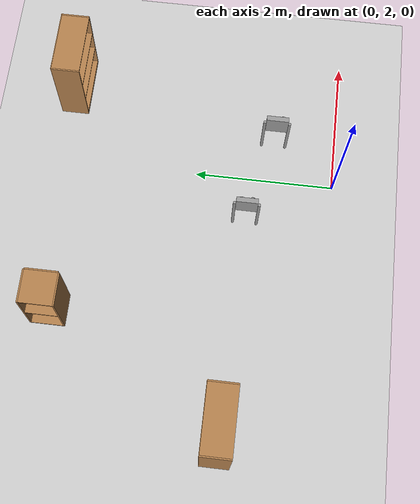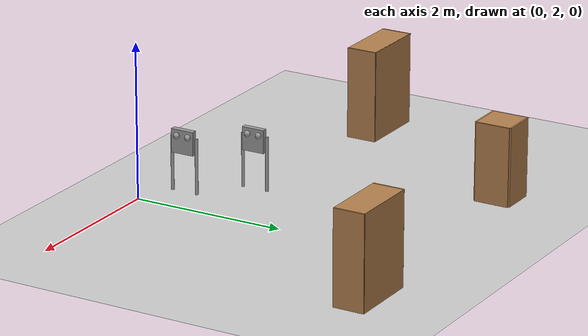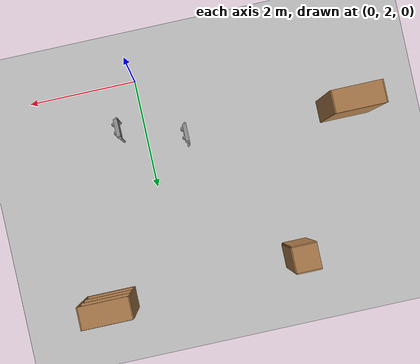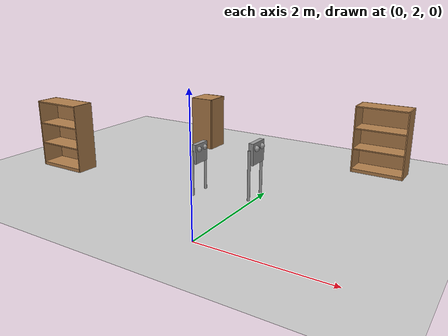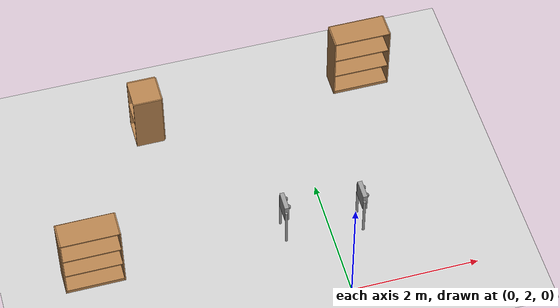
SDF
<sdf version="1.7">
 <world name="default">
  <model name="ground_plane">
   <static>1</static>
   <link name="link">
    <collision name="collision">
     <geometry><plane><normal>0 0 1</normal><size>100 100</size></plane></geometry>
     <surface>
      <contact><collide_bitmask>65535</collide_bitmask></contact>
      <friction><ode><mu>100</mu><mu2>50</mu2></ode></friction>
     </surface>
    </collision>
    <visual name="visual">
     <cast_shadows>0</cast_shadows>
     <geometry><plane><normal>0 0 1</normal><size>100 100</size></plane></geometry>
     <material>
      <script><uri>file://media/materials/scripts/gazebo.material</uri><name>Gazebo/Grey</name></script>
     </material>
    </visual>
   </link>
  </model>
  <model name="cabinet_clone_0">
   <static>1</static>
   <link name="cabinet_bottom_plate">
    <inertial>
     <pose>0 0 -1 0 -0 0</pose>
     <inertia><ixx>2.05</ixx><ixy>0</ixy><ixz>0</ixz><iyy>2.05</iyy><iyz>0</iyz><izz>2.05</izz></inertia>
     <mass>25</mass>
    </inertial>
    <collision name="cabinet_bottom_plate_geom">
     <pose>0 0 0.01 0 -0 0</pose>
     <geometry><box><size>0.45 0.45 0.02</size></box></geometry>
    </collision>
    <visual name="cabinet_bottom_plate_geom_visual">
     <pose>0 0 0.01 0 -0 0</pose>
     <geometry><box><size>0.45 0.45 0.02</size></box></geometry>
     <material>
      <script><uri>file://media/materials/scripts/gazebo.material</uri><name>Gazebo/Wood</name></script>
     </material>
    </visual>
    <collision name="cabinet_bottom_plate_geom_cabinet_back_plate">
     <pose>0.235 0 0.51 0 -0 0</pose>
     <geometry><box><size>0.02 0.45 1.02</size></box></geometry>
    </collision>
    <visual name="cabinet_bottom_plate_geom_cabinet_back_plate_visual">
     <pose>0.235 0 0.51 0 -0 0</pose>
     <geometry><box><size>0.02 0.45 1.02</size></box></geometry>
     <material>
      <script><uri>file://media/materials/scripts/gazebo.material</uri><name>Gazebo/Wood</name></script>
     </material>
    </visual>
    <collision name="cabinet_bottom_plate_geom_cabinet_left_plate">
     <pose>0 0.235 0.51 0 -0 0</pose>
     <geometry><box><size>0.45 0.02 1.02</size></box></geometry>
    </collision>
    <visual name="cabinet_bottom_plate_geom_cabinet_left_plate_visual">
     <pose>0 0.235 0.51 0 -0 0</pose>
     <geometry><box><size>0.45 0.02 1.02</size></box></geometry>
     <material>
      <script><uri>file://media/materials/scripts/gazebo.material</uri><name>Gazebo/Wood</name></script>
     </material>
    </visual>
    <collision name="cabinet_bottom_plate_geom_cabinet_middle_plate">
     <pose>0 0 0.51 0 -0 0</pose>
     <geometry><box><size>0.45 0.45 0.02</size></box></geometry>
    </collision>
    <visual name="cabinet_bottom_plate_geom_cabinet_middle_plate_visual">
     <pose>0 0 0.51 0 -0 0</pose>
     <geometry><box><size>0.45 0.45 0.02</size></box></geometry>
     <material>
      <script><uri>file://media/materials/scripts/gazebo.material</uri><name>Gazebo/Wood</name></script>
     </material>
    </visual>
    <collision name="cabinet_bottom_plate_geom_cabinet_right_plate">
     <pose>0 -0.235 0.51 0 -0 0</pose>
     <geometry><box><size>0.45 0.02 1.02</size></box></geometry>
    </collision>
    <visual name="cabinet_bottom_plate_geom_cabinet_right_plate_visual">
     <pose>0 -0.235 0.51 0 -0 0</pose>
     <geometry><box><size>0.45 0.02 1.02</size></box></geometry>
     <material>
      <script><uri>file://media/materials/scripts/gazebo.material</uri><name>Gazebo/Wood</name></script>
     </material>
    </visual>
    <collision name="cabinet_bottom_plate_geom_cabinet_top_plate">
     <pose>0 0 1.01 0 -0 0</pose>
     <geometry><box><size>0.45 0.45 0.02</size></box></geometry>
    </collision>
    <visual name="cabinet_bottom_plate_geom_cabinet_top_plate_visual">
     <pose>0 0 1.01 0 -0 0</pose>
     <geometry><box><size>0.45 0.45 0.02</size></box></geometry>
     <material>
      <script><uri>file://media/materials/scripts/gazebo.material</uri><name>Gazebo/Wood</name></script>
     </material>
    </visual>
   </link>
   <pose>-2.27456 5.78159 0 0 -0 0</pose>
  </model>
  <model name="bookshelf">
   <static>1</static>
   <link name="link">
    <inertial><mass>1</mass></inertial>
    <collision name="back">
     <pose>0 0.005 0.6 0 -0 0</pose>
     <geometry><box><size>0.9 0.01 1.2</size></box></geometry>
    </collision>
    <visual name="visual1">
     <pose>0 0.005 0.6 0 -0 0</pose>
     <geometry><box><size>0.9 0.01 1.2</size></box></geometry>
     <material>
      <script><uri>file://media/materials/scripts/gazebo.material</uri><name>Gazebo/Wood</name></script>
     </material>
    </visual>
    <collision name="left_side">
     <pose>0.45 -0.195 0.6 0 -0 0</pose>
     <geometry><box><size>0.02 0.4 1.2</size></box></geometry>
    </collision>
    <visual name="visual2">
     <pose>0.45 -0.195 0.6 0 -0 0</pose>
     <geometry><box><size>0.02 0.4 1.2</size></box></geometry>
     <material>
      <script><uri>file://media/materials/scripts/gazebo.material</uri><name>Gazebo/Wood</name></script>
     </material>
    </visual>
    <collision name="right_side">
     <pose>-0.45 -0.195 0.6 0 -0 0</pose>
     <geometry><box><size>0.02 0.4 1.2</size></box></geometry>
    </collision>
    <visual name="visual3">
     <pose>-0.45 -0.195 0.6 0 -0 0</pose>
     <geometry><box><size>0.02 0.4 1.2</size></box></geometry>
     <material>
      <script><uri>file://media/materials/scripts/gazebo.material</uri><name>Gazebo/Wood</name></script>
     </material>
    </visual>
    <collision name="bottom">
     <pose>0 -0.195 0.03 0 -0 0</pose>
     <geometry><box><size>0.88 0.4 0.06</size></box></geometry>
    </collision>
    <visual name="visual4">
     <pose>0 -0.195 0.03 0 -0 0</pose>
     <geometry><box><size>0.88 0.4 0.06</size></box></geometry>
     <material>
      <script><uri>file://media/materials/scripts/gazebo.material</uri><name>Gazebo/Wood</name></script>
     </material>
    </visual>
    <collision name="top">
     <pose>0 -0.195 1.19 0 -0 0</pose>
     <geometry><box><size>0.88 0.4 0.02</size></box></geometry>
    </collision>
    <visual name="visual5">
     <pose>0 -0.195 1.19 0 -0 0</pose>
     <geometry><box><size>0.88 0.4 0.02</size></box></geometry>
     <material>
      <script><uri>file://media/materials/scripts/gazebo.material</uri><name>Gazebo/Wood</name></script>
     </material>
    </visual>
    <collision name="low_shelf">
     <pose>0 -0.195 0.43 0 -0 0</pose>
     <geometry><box><size>0.88 0.4 0.02</size></box></geometry>
    </collision>
    <visual name="visual6">
     <pose>0 -0.195 0.43 0 -0 0</pose>
     <geometry><box><size>0.88 0.4 0.02</size></box></geometry>
     <material>
      <script><uri>file://media/materials/scripts/gazebo.material</uri><name>Gazebo/Wood</name></script>
     </material>
    </visual>
    <collision name="high_shelf">
     <pose>0 -0.195 0.8 0 -0 0</pose>
     <geometry><box><size>0.88 0.4 0.02</size></box></geometry>
    </collision>
    <visual name="visual7">
     <pose>0 -0.195 0.8 0 -0 0</pose>
     <geometry><box><size>0.88 0.4 0.02</size></box></geometry>
     <material>
      <script><uri>file://media/materials/scripts/gazebo.material</uri><name>Gazebo/Wood</name></script>
     </material>
    </visual>
   </link>
   <pose>-3.68929 3.48271 0 0 -0 0</pose>
  </model>
  <model name="bookshelf_clone">
   <static>1</static>
   <link name="link">
    <inertial><mass>1</mass></inertial>
    <collision name="back">
     <pose>0 0.005 0.6 0 -0 0</pose>
     <geometry><box><size>0.9 0.01 1.2</size></box></geometry>
    </collision>
    <visual name="visual1">
     <pose>0 0.005 0.6 0 -0 0</pose>
     <geometry><box><size>0.9 0.01 1.2</size></box></geometry>
     <material>
      <script><uri>file://media/materials/scripts/gazebo.material</uri><name>Gazebo/Wood</name></script>
     </material>
    </visual>
    <collision name="left_side">
     <pose>0.45 -0.195 0.6 0 -0 0</pose>
     <geometry><box><size>0.02 0.4 1.2</size></box></geometry>
    </collision>
    <visual name="visual2">
     <pose>0.45 -0.195 0.6 0 -0 0</pose>
     <geometry><box><size>0.02 0.4 1.2</size></box></geometry>
     <material>
      <script><uri>file://media/materials/scripts/gazebo.material</uri><name>Gazebo/Wood</name></script>
     </material>
    </visual>
    <collision name="right_side">
     <pose>-0.45 -0.195 0.6 0 -0 0</pose>
     <geometry><box><size>0.02 0.4 1.2</size></box></geometry>
    </collision>
    <visual name="visual3">
     <pose>-0.45 -0.195 0.6 0 -0 0</pose>
     <geometry><box><size>0.02 0.4 1.2</size></box></geometry>
     <material>
      <script><uri>file://media/materials/scripts/gazebo.material</uri><name>Gazebo/Wood</name></script>
     </material>
    </visual>
    <collision name="bottom">
     <pose>0 -0.195 0.03 0 -0 0</pose>
     <geometry><box><size>0.88 0.4 0.06</size></box></geometry>
    </collision>
    <visual name="visual4">
     <pose>0 -0.195 0.03 0 -0 0</pose>
     <geometry><box><size>0.88 0.4 0.06</size></box></geometry>
     <material>
      <script><uri>file://media/materials/scripts/gazebo.material</uri><name>Gazebo/Wood</name></script>
     </material>
    </visual>
    <collision name="top">
     <pose>0 -0.195 1.19 0 -0 0</pose>
     <geometry><box><size>0.88 0.4 0.02</size></box></geometry>
    </collision>
    <visual name="visual5">
     <pose>0 -0.195 1.19 0 -0 0</pose>
     <geometry><box><size>0.88 0.4 0.02</size></box></geometry>
     <material>
      <script><uri>file://media/materials/scripts/gazebo.material</uri><name>Gazebo/Wood</name></script>
     </material>
    </visual>
    <collision name="low_shelf">
     <pose>0 -0.195 0.43 0 -0 0</pose>
     <geometry><box><size>0.88 0.4 0.02</size></box></geometry>
    </collision>
    <visual name="visual6">
     <pose>0 -0.195 0.43 0 -0 0</pose>
     <geometry><box><size>0.88 0.4 0.02</size></box></geometry>
     <material>
      <script><uri>file://media/materials/scripts/gazebo.material</uri><name>Gazebo/Wood</name></script>
     </material>
    </visual>
    <collision name="high_shelf">
     <pose>0 -0.195 0.8 0 -0 0</pose>
     <geometry><box><size>0.88 0.4 0.02</size></box></geometry>
    </collision>
    <visual name="visual7">
     <pose>0 -0.195 0.8 0 -0 0</pose>
     <geometry><box><size>0.88 0.4 0.02</size></box></geometry>
     <material>
      <script><uri>file://media/materials/scripts/gazebo.material</uri><name>Gazebo/Wood</name></script>
     </material>
    </visual>
   </link>
   <pose>1.27744 6.13406 0 0 -0 0</pose>
  </model>
  <model name="HumanoidRobot">
   <link name="link_0">
    <inertial>
     <mass>1</mass>
     <inertia><ixx>0.145833</ixx><ixy>0</ixy><ixz>0</ixz><iyy>0.145833</iyy><iyz>0</iyz><izz>0.125</izz></inertia>
    </inertial>
    <pose>-0.005 -0.16914 -0.096951 0 -0 0</pose>
    <visual name="visual">
     <geometry><cylinder><radius>0.02</radius><length>0.7</length></cylinder></geometry>
     <material>
      <lighting>1</lighting>
      <script><uri>file://media/materials/scripts/gazebo.material</uri><name>Gazebo/Grey</name></script>
      <shader type="pixel"><normal_map>__default__</normal_map></shader>
      <ambient>0.3 0.3 0.3 1</ambient>
      <diffuse>0.7 0.7 0.7 1</diffuse>
      <specular>0.01 0.01 0.01 1</specular>
      <emissive>0 0 0 1</emissive>
     </material>
    </visual>
    <collision name="collision">
     <geometry><cylinder><radius>0.02</radius><length>0.7</length></cylinder></geometry>
     <surface>
      <friction>
       <ode><mu>1</mu><mu2>1</mu2><fdir1>0 0 0</fdir1><slip1>0</slip1><slip2>0</slip2></ode>
       <torsional>
        <coefficient>1</coefficient>
        <patch_radius>0</patch_radius>
        <surface_radius>0</surface_radius>
        <use_patch_radius>1</use_patch_radius>
        <ode><slip>0</slip></ode>
       </torsional>
      </friction>
      <bounce><restitution_coefficient>0</restitution_coefficient><threshold>1e+06</threshold></bounce>
      <contact>
       <collide_without_contact>0</collide_without_contact>
       <collide_without_contact_bitmask>1</collide_without_contact_bitmask>
       <collide_bitmask>1</collide_bitmask>
       <ode>
        <soft_cfm>0</soft_cfm>
        <soft_erp>0.2</soft_erp>
        <kp>1e+13</kp>
        <kd>1</kd>
        <max_vel>0.01</max_vel>
        <min_depth>0</min_depth>
       </ode>
       <bullet>
        <split_impulse>1</split_impulse>
        <split_impulse_penetration_threshold>-0.01</split_impulse_penetration_threshold>
        <soft_cfm>0</soft_cfm>
        <soft_erp>0.2</soft_erp>
        <kp>1e+13</kp>
        <kd>1</kd>
       </bullet>
      </contact>
     </surface>
    </collision>
   </link>
   <link name="link_0_clone">
    <inertial>
     <mass>1</mass>
     <inertia><ixx>0.145833</ixx><ixy>0</ixy><ixz>0</ixz><iyy>0.145833</iyy><iyz>0</iyz><izz>0.125</izz></inertia>
    </inertial>
    <pose>-0.005 0.16957 -0.096951 0 -0 0</pose>
    <visual name="visual">
     <geometry><cylinder><radius>0.02</radius><length>0.7</length></cylinder></geometry>
     <material>
      <lighting>1</lighting>
      <script><uri>file://media/materials/scripts/gazebo.material</uri><name>Gazebo/Grey</name></script>
      <shader type="pixel"><normal_map>__default__</normal_map></shader>
      <ambient>0.3 0.3 0.3 1</ambient>
      <diffuse>0.7 0.7 0.7 1</diffuse>
      <specular>0.01 0.01 0.01 1</specular>
      <emissive>0 0 0 1</emissive>
     </material>
    </visual>
    <collision name="collision">
     <geometry><cylinder><radius>0.02</radius><length>0.7</length></cylinder></geometry>
     <surface>
      <friction>
       <ode><mu>1</mu><mu2>1</mu2><fdir1>0 0 0</fdir1><slip1>0</slip1><slip2>0</slip2></ode>
       <torsional>
        <coefficient>1</coefficient>
        <patch_radius>0</patch_radius>
        <surface_radius>0</surface_radius>
        <use_patch_radius>1</use_patch_radius>
        <ode><slip>0</slip></ode>
       </torsional>
      </friction>
      <bounce><restitution_coefficient>0</restitution_coefficient><threshold>1e+06</threshold></bounce>
      <contact>
       <collide_without_contact>0</collide_without_contact>
       <collide_without_contact_bitmask>1</collide_without_contact_bitmask>
       <collide_bitmask>1</collide_bitmask>
       <ode>
        <soft_cfm>0</soft_cfm>
        <soft_erp>0.2</soft_erp>
        <kp>1e+13</kp>
        <kd>1</kd>
        <max_vel>0.01</max_vel>
        <min_depth>0</min_depth>
       </ode>
       <bullet>
        <split_impulse>1</split_impulse>
        <split_impulse_penetration_threshold>-0.01</split_impulse_penetration_threshold>
        <soft_cfm>0</soft_cfm>
        <soft_erp>0.2</soft_erp>
        <kp>1e+13</kp>
        <kd>1</kd>
       </bullet>
      </contact>
     </surface>
    </collision>
   </link>
   <link name="link_1">
    <inertial>
     <mass>1</mass>
     <inertia>
      <ixx>0.166667</ixx>
      <ixy>0</ixy>
      <ixz>0</ixz>
      <iyy>0.166667</iyy>
      <iyz>0</iyz>
      <izz>0.166667</izz>
     </inertia>
    </inertial>
    <pose>0.01 -0.00043 0.196694 0 -0 0</pose>
    <visual name="visual">
     <geometry><box><size>0.07 0.3 0.3</size></box></geometry>
     <material>
      <lighting>1</lighting>
      <script><uri>file://media/materials/scripts/gazebo.material</uri><name>Gazebo/Grey</name></script>
      <shader type="pixel"><normal_map>__default__</normal_map></shader>
      <ambient>0.3 0.3 0.3 1</ambient>
      <diffuse>0.7 0.7 0.7 1</diffuse>
      <specular>0.01 0.01 0.01 1</specular>
      <emissive>0 0 0 1</emissive>
     </material>
    </visual>
    <collision name="collision">
     <geometry><box><size>0.07 0.3 0.3</size></box></geometry>
     <surface>
      <friction>
       <ode><mu>1</mu><mu2>1</mu2><fdir1>0 0 0</fdir1><slip1>0</slip1><slip2>0</slip2></ode>
       <torsional>
        <coefficient>1</coefficient>
        <patch_radius>0</patch_radius>
        <surface_radius>0</surface_radius>
        <use_patch_radius>1</use_patch_radius>
        <ode><slip>0</slip></ode>
       </torsional>
      </friction>
      <bounce><restitution_coefficient>0</restitution_coefficient><threshold>1e+06</threshold></bounce>
      <contact>
       <collide_without_contact>0</collide_without_contact>
       <collide_without_contact_bitmask>1</collide_without_contact_bitmask>
       <collide_bitmask>1</collide_bitmask>
       <ode>
        <soft_cfm>0</soft_cfm>
        <soft_erp>0.2</soft_erp>
        <kp>1e+13</kp>
        <kd>1</kd>
        <max_vel>0.01</max_vel>
        <min_depth>0</min_depth>
       </ode>
       <bullet>
        <split_impulse>1</split_impulse>
        <split_impulse_penetration_threshold>-0.01</split_impulse_penetration_threshold>
        <soft_cfm>0</soft_cfm>
        <soft_erp>0.2</soft_erp>
        <kp>1e+13</kp>
        <kd>1</kd>
       </bullet>
      </contact>
     </surface>
    </collision>
   </link>
   <link name="link_3">
    <inertial>
     <mass>0.000505039</mass>
     <inertia>
      <ixx>3.20326e-07</ixx>
      <ixy>0</ixy>
      <ixz>0</ixz>
      <iyy>3.20326e-07</iyy>
      <iyz>0</iyz>
      <izz>3.20326e-07</izz>
     </inertia>
    </inertial>
    <pose>0.045067 0.079776 0.268028 0 -0 0</pose>
    <visual name="visual">
     <geometry><sphere><radius>0.0398202</radius></sphere></geometry>
     <material>
      <lighting>1</lighting>
      <script><uri>file://media/materials/scripts/gazebo.material</uri><name>Gazebo/Grey</name></script>
      <shader type="pixel"/>
      <emissive>0 0 0 1</emissive>
     </material>
    </visual>
    <collision name="collision">
     <geometry><sphere><radius>0.03982</radius></sphere></geometry>
     <surface>
      <friction>
       <ode><mu>1</mu><mu2>1</mu2><fdir1>0 0 0</fdir1><slip1>0</slip1><slip2>0</slip2></ode>
       <torsional>
        <coefficient>1</coefficient>
        <patch_radius>0</patch_radius>
        <surface_radius>0</surface_radius>
        <use_patch_radius>1</use_patch_radius>
        <ode><slip>0</slip></ode>
       </torsional>
      </friction>
      <bounce><restitution_coefficient>0</restitution_coefficient><threshold>1e+06</threshold></bounce>
      <contact>
       <collide_without_contact>0</collide_without_contact>
       <collide_without_contact_bitmask>1</collide_without_contact_bitmask>
       <collide_bitmask>1</collide_bitmask>
       <ode>
        <soft_cfm>0</soft_cfm>
        <soft_erp>0.2</soft_erp>
        <kp>1e+13</kp>
        <kd>1</kd>
        <max_vel>0.01</max_vel>
        <min_depth>0</min_depth>
       </ode>
       <bullet>
        <split_impulse>1</split_impulse>
        <split_impulse_penetration_threshold>-0.01</split_impulse_penetration_threshold>
        <soft_cfm>0</soft_cfm>
        <soft_erp>0.2</soft_erp>
        <kp>1e+13</kp>
        <kd>1</kd>
       </bullet>
      </contact>
     </surface>
    </collision>
   </link>
   <link name="link_3_clone">
    <inertial>
     <mass>0.000505039</mass>
     <inertia>
      <ixx>3.20326e-07</ixx>
      <ixy>0</ixy>
      <ixz>0</ixz>
      <iyy>3.20326e-07</iyy>
      <iyz>0</iyz>
      <izz>3.20326e-07</izz>
     </inertia>
    </inertial>
    <pose>0.049349 -0.072893 0.26849 0 -0 0</pose>
    <visual name="visual">
     <geometry><sphere><radius>0.0398202</radius></sphere></geometry>
     <material>
      <lighting>1</lighting>
      <script><uri>file://media/materials/scripts/gazebo.material</uri><name>Gazebo/Grey</name></script>
      <shader type="pixel"/>
      <emissive>0 0 0 1</emissive>
     </material>
    </visual>
    <collision name="collision">
     <geometry><sphere><radius>0.03982</radius></sphere></geometry>
     <surface>
      <friction>
       <ode><mu>1</mu><mu2>1</mu2><fdir1>0 0 0</fdir1><slip1>0</slip1><slip2>0</slip2></ode>
       <torsional>
        <coefficient>1</coefficient>
        <patch_radius>0</patch_radius>
        <surface_radius>0</surface_radius>
        <use_patch_radius>1</use_patch_radius>
        <ode><slip>0</slip></ode>
       </torsional>
      </friction>
      <bounce><restitution_coefficient>0</restitution_coefficient><threshold>1e+06</threshold></bounce>
      <contact>
       <collide_without_contact>0</collide_without_contact>
       <collide_without_contact_bitmask>1</collide_without_contact_bitmask>
       <collide_bitmask>1</collide_bitmask>
       <ode>
        <soft_cfm>0</soft_cfm>
        <soft_erp>0.2</soft_erp>
        <kp>1e+13</kp>
        <kd>1</kd>
        <max_vel>0.01</max_vel>
        <min_depth>0</min_depth>
       </ode>
       <bullet>
        <split_impulse>1</split_impulse>
        <split_impulse_penetration_threshold>-0.01</split_impulse_penetration_threshold>
        <soft_cfm>0</soft_cfm>
        <soft_erp>0.2</soft_erp>
        <kp>1e+13</kp>
        <kd>1</kd>
       </bullet>
      </contact>
     </surface>
    </collision>
   </link>
   <joint name="link_1_JOINT_0" type="revolute">
    <parent>link_1</parent>
    <child>link_0_clone</child>
    <axis>
     <xyz>0 1 0</xyz>
     <limit>
      <lower>-1.79769e+308</lower>
      <upper>1.79769e+308</upper>
      <effort>-1</effort>
      <velocity>-1</velocity>
     </limit>
     <dynamics>
      <spring_reference>0</spring_reference>
      <spring_stiffness>0</spring_stiffness>
      <damping>0</damping>
     </dynamics>
    </axis>
    <physics>
     <ode><limit><cfm>0</cfm><erp>0.2</erp></limit><suspension><cfm>0</cfm><erp>0.2</erp></suspension></ode>
    </physics>
   </joint>
   <joint name="link_1_JOINT_2" type="revolute">
    <parent>link_1</parent>
    <child>link_0</child>
    <axis>
     <xyz>-0 -1 -0</xyz>
     <limit>
      <lower>-1.79769e+308</lower>
      <upper>1.79769e+308</upper>
      <effort>-1</effort>
      <velocity>-1</velocity>
     </limit>
     <dynamics>
      <spring_reference>0</spring_reference>
      <spring_stiffness>0</spring_stiffness>
      <damping>0</damping>
     </dynamics>
    </axis>
    <physics>
     <ode><limit><cfm>0</cfm><erp>0.2</erp></limit><suspension><cfm>0</cfm><erp>0.2</erp></suspension></ode>
    </physics>
   </joint>
   <joint name="link_1_JOINT_3" type="fixed">
    <parent>link_1</parent>
    <child>link_3</child>
    <physics>
     <ode><limit><cfm>0</cfm><erp>0.2</erp></limit><suspension><cfm>0</cfm><erp>0.2</erp></suspension></ode>
    </physics>
   </joint>
   <joint name="link_1_JOINT_4" type="fixed">
    <parent>link_1</parent>
    <child>link_3_clone</child>
    <physics>
     <ode><limit><cfm>0</cfm><erp>0.2</erp></limit><suspension><cfm>0</cfm><erp>0.2</erp></suspension></ode>
    </physics>
   </joint>
   <static>0</static>
   <pose>0.401512 2.92793 0.848131 0 -0 0</pose>
  </model>
  <model name="HumanoidRobot_0">
   <link name="link_0">
    <inertial>
     <mass>1</mass>
     <inertia><ixx>0.145833</ixx><ixy>0</ixy><ixz>0</ixz><iyy>0.145833</iyy><iyz>0</iyz><izz>0.125</izz></inertia>
    </inertial>
    <pose>-0.005 -0.16914 -0.096951 0 -0 0</pose>
    <visual name="visual">
     <geometry><cylinder><radius>0.02</radius><length>0.7</length></cylinder></geometry>
     <material>
      <lighting>1</lighting>
      <script><uri>file://media/materials/scripts/gazebo.material</uri><name>Gazebo/Grey</name></script>
      <shader type="pixel"><normal_map>__default__</normal_map></shader>
      <ambient>0.3 0.3 0.3 1</ambient>
      <diffuse>0.7 0.7 0.7 1</diffuse>
      <specular>0.01 0.01 0.01 1</specular>
      <emissive>0 0 0 1</emissive>
     </material>
    </visual>
    <collision name="collision">
     <geometry><cylinder><radius>0.02</radius><length>0.7</length></cylinder></geometry>
     <surface>
      <friction>
       <ode><mu>1</mu><mu2>1</mu2><fdir1>0 0 0</fdir1><slip1>0</slip1><slip2>0</slip2></ode>
       <torsional>
        <coefficient>1</coefficient>
        <patch_radius>0</patch_radius>
        <surface_radius>0</surface_radius>
        <use_patch_radius>1</use_patch_radius>
        <ode><slip>0</slip></ode>
       </torsional>
      </friction>
      <bounce><restitution_coefficient>0</restitution_coefficient><threshold>1e+06</threshold></bounce>
      <contact>
       <collide_without_contact>0</collide_without_contact>
       <collide_without_contact_bitmask>1</collide_without_contact_bitmask>
       <collide_bitmask>1</collide_bitmask>
       <ode>
        <soft_cfm>0</soft_cfm>
        <soft_erp>0.2</soft_erp>
        <kp>1e+13</kp>
        <kd>1</kd>
        <max_vel>0.01</max_vel>
        <min_depth>0</min_depth>
       </ode>
       <bullet>
        <split_impulse>1</split_impulse>
        <split_impulse_penetration_threshold>-0.01</split_impulse_penetration_threshold>
        <soft_cfm>0</soft_cfm>
        <soft_erp>0.2</soft_erp>
        <kp>1e+13</kp>
        <kd>1</kd>
       </bullet>
      </contact>
     </surface>
    </collision>
   </link>
   <link name="link_0_clone">
    <inertial>
     <mass>1</mass>
     <inertia><ixx>0.145833</ixx><ixy>0</ixy><ixz>0</ixz><iyy>0.145833</iyy><iyz>0</iyz><izz>0.125</izz></inertia>
    </inertial>
    <pose>-0.005 0.16957 -0.096951 0 -0 0</pose>
    <visual name="visual">
     <geometry><cylinder><radius>0.02</radius><length>0.7</length></cylinder></geometry>
     <material>
      <lighting>1</lighting>
      <script><uri>file://media/materials/scripts/gazebo.material</uri><name>Gazebo/Grey</name></script>
      <shader type="pixel"><normal_map>__default__</normal_map></shader>
      <ambient>0.3 0.3 0.3 1</ambient>
      <diffuse>0.7 0.7 0.7 1</diffuse>
      <specular>0.01 0.01 0.01 1</specular>
      <emissive>0 0 0 1</emissive>
     </material>
    </visual>
    <collision name="collision">
     <geometry><cylinder><radius>0.02</radius><length>0.7</length></cylinder></geometry>
     <surface>
      <friction>
       <ode><mu>1</mu><mu2>1</mu2><fdir1>0 0 0</fdir1><slip1>0</slip1><slip2>0</slip2></ode>
       <torsional>
        <coefficient>1</coefficient>
        <patch_radius>0</patch_radius>
        <surface_radius>0</surface_radius>
        <use_patch_radius>1</use_patch_radius>
        <ode><slip>0</slip></ode>
       </torsional>
      </friction>
      <bounce><restitution_coefficient>0</restitution_coefficient><threshold>1e+06</threshold></bounce>
      <contact>
       <collide_without_contact>0</collide_without_contact>
       <collide_without_contact_bitmask>1</collide_without_contact_bitmask>
       <collide_bitmask>1</collide_bitmask>
       <ode>
        <soft_cfm>0</soft_cfm>
        <soft_erp>0.2</soft_erp>
        <kp>1e+13</kp>
        <kd>1</kd>
        <max_vel>0.01</max_vel>
        <min_depth>0</min_depth>
       </ode>
       <bullet>
        <split_impulse>1</split_impulse>
        <split_impulse_penetration_threshold>-0.01</split_impulse_penetration_threshold>
        <soft_cfm>0</soft_cfm>
        <soft_erp>0.2</soft_erp>
        <kp>1e+13</kp>
        <kd>1</kd>
       </bullet>
      </contact>
     </surface>
    </collision>
   </link>
   <link name="link_1">
    <inertial>
     <mass>1</mass>
     <inertia>
      <ixx>0.166667</ixx>
      <ixy>0</ixy>
      <ixz>0</ixz>
      <iyy>0.166667</iyy>
      <iyz>0</iyz>
      <izz>0.166667</izz>
     </inertia>
    </inertial>
    <pose>0.01 -0.00043 0.196694 0 -0 0</pose>
    <visual name="visual">
     <geometry><box><size>0.07 0.3 0.3</size></box></geometry>
     <material>
      <lighting>1</lighting>
      <script><uri>file://media/materials/scripts/gazebo.material</uri><name>Gazebo/Grey</name></script>
      <shader type="pixel"><normal_map>__default__</normal_map></shader>
      <ambient>0.3 0.3 0.3 1</ambient>
      <diffuse>0.7 0.7 0.7 1</diffuse>
      <specular>0.01 0.01 0.01 1</specular>
      <emissive>0 0 0 1</emissive>
     </material>
    </visual>
    <collision name="collision">
     <geometry><box><size>0.07 0.3 0.3</size></box></geometry>
     <surface>
      <friction>
       <ode><mu>1</mu><mu2>1</mu2><fdir1>0 0 0</fdir1><slip1>0</slip1><slip2>0</slip2></ode>
       <torsional>
        <coefficient>1</coefficient>
        <patch_radius>0</patch_radius>
        <surface_radius>0</surface_radius>
        <use_patch_radius>1</use_patch_radius>
        <ode><slip>0</slip></ode>
       </torsional>
      </friction>
      <bounce><restitution_coefficient>0</restitution_coefficient><threshold>1e+06</threshold></bounce>
      <contact>
       <collide_without_contact>0</collide_without_contact>
       <collide_without_contact_bitmask>1</collide_without_contact_bitmask>
       <collide_bitmask>1</collide_bitmask>
       <ode>
        <soft_cfm>0</soft_cfm>
        <soft_erp>0.2</soft_erp>
        <kp>1e+13</kp>
        <kd>1</kd>
        <max_vel>0.01</max_vel>
        <min_depth>0</min_depth>
       </ode>
       <bullet>
        <split_impulse>1</split_impulse>
        <split_impulse_penetration_threshold>-0.01</split_impulse_penetration_threshold>
        <soft_cfm>0</soft_cfm>
        <soft_erp>0.2</soft_erp>
        <kp>1e+13</kp>
        <kd>1</kd>
       </bullet>
      </contact>
     </surface>
    </collision>
   </link>
   <link name="link_3">
    <inertial>
     <mass>0.000505039</mass>
     <inertia>
      <ixx>3.20326e-07</ixx>
      <ixy>0</ixy>
      <ixz>0</ixz>
      <iyy>3.20326e-07</iyy>
      <iyz>0</iyz>
      <izz>3.20326e-07</izz>
     </inertia>
    </inertial>
    <pose>0.045067 0.079776 0.268028 0 -0 0</pose>
    <visual name="visual">
     <geometry><sphere><radius>0.0398202</radius></sphere></geometry>
     <material>
      <lighting>1</lighting>
      <script><uri>file://media/materials/scripts/gazebo.material</uri><name>Gazebo/Grey</name></script>
      <shader type="pixel"/>
      <emissive>0 0 0 1</emissive>
     </material>
    </visual>
    <collision name="collision">
     <geometry><sphere><radius>0.03982</radius></sphere></geometry>
     <surface>
      <friction>
       <ode><mu>1</mu><mu2>1</mu2><fdir1>0 0 0</fdir1><slip1>0</slip1><slip2>0</slip2></ode>
       <torsional>
        <coefficient>1</coefficient>
        <patch_radius>0</patch_radius>
        <surface_radius>0</surface_radius>
        <use_patch_radius>1</use_patch_radius>
        <ode><slip>0</slip></ode>
       </torsional>
      </friction>
      <bounce><restitution_coefficient>0</restitution_coefficient><threshold>1e+06</threshold></bounce>
      <contact>
       <collide_without_contact>0</collide_without_contact>
       <collide_without_contact_bitmask>1</collide_without_contact_bitmask>
       <collide_bitmask>1</collide_bitmask>
       <ode>
        <soft_cfm>0</soft_cfm>
        <soft_erp>0.2</soft_erp>
        <kp>1e+13</kp>
        <kd>1</kd>
        <max_vel>0.01</max_vel>
        <min_depth>0</min_depth>
       </ode>
       <bullet>
        <split_impulse>1</split_impulse>
        <split_impulse_penetration_threshold>-0.01</split_impulse_penetration_threshold>
        <soft_cfm>0</soft_cfm>
        <soft_erp>0.2</soft_erp>
        <kp>1e+13</kp>
        <kd>1</kd>
       </bullet>
      </contact>
     </surface>
    </collision>
   </link>
   <link name="link_3_clone">
    <inertial>
     <mass>0.000505039</mass>
     <inertia>
      <ixx>3.20326e-07</ixx>
      <ixy>0</ixy>
      <ixz>0</ixz>
      <iyy>3.20326e-07</iyy>
      <iyz>0</iyz>
      <izz>3.20326e-07</izz>
     </inertia>
    </inertial>
    <pose>0.049349 -0.072893 0.26849 0 -0 0</pose>
    <visual name="visual">
     <geometry><sphere><radius>0.0398202</radius></sphere></geometry>
     <material>
      <lighting>1</lighting>
      <script><uri>file://media/materials/scripts/gazebo.material</uri><name>Gazebo/Grey</name></script>
      <shader type="pixel"/>
      <emissive>0 0 0 1</emissive>
     </material>
    </visual>
    <collision name="collision">
     <geometry><sphere><radius>0.03982</radius></sphere></geometry>
     <surface>
      <friction>
       <ode><mu>1</mu><mu2>1</mu2><fdir1>0 0 0</fdir1><slip1>0</slip1><slip2>0</slip2></ode>
       <torsional>
        <coefficient>1</coefficient>
        <patch_radius>0</patch_radius>
        <surface_radius>0</surface_radius>
        <use_patch_radius>1</use_patch_radius>
        <ode><slip>0</slip></ode>
       </torsional>
      </friction>
      <bounce><restitution_coefficient>0</restitution_coefficient><threshold>1e+06</threshold></bounce>
      <contact>
       <collide_without_contact>0</collide_without_contact>
       <collide_without_contact_bitmask>1</collide_without_contact_bitmask>
       <collide_bitmask>1</collide_bitmask>
       <ode>
        <soft_cfm>0</soft_cfm>
        <soft_erp>0.2</soft_erp>
        <kp>1e+13</kp>
        <kd>1</kd>
        <max_vel>0.01</max_vel>
        <min_depth>0</min_depth>
       </ode>
       <bullet>
        <split_impulse>1</split_impulse>
        <split_impulse_penetration_threshold>-0.01</split_impulse_penetration_threshold>
        <soft_cfm>0</soft_cfm>
        <soft_erp>0.2</soft_erp>
        <kp>1e+13</kp>
        <kd>1</kd>
       </bullet>
      </contact>
     </surface>
    </collision>
   </link>
   <joint name="link_1_JOINT_0" type="revolute">
    <parent>link_1</parent>
    <child>link_0_clone</child>
    <axis>
     <xyz>0 1 0</xyz>
     <limit>
      <lower>-1.79769e+308</lower>
      <upper>1.79769e+308</upper>
      <effort>-1</effort>
      <velocity>-1</velocity>
     </limit>
     <dynamics>
      <spring_reference>0</spring_reference>
      <spring_stiffness>0</spring_stiffness>
      <damping>0</damping>
     </dynamics>
    </axis>
    <physics>
     <ode><limit><cfm>0</cfm><erp>0.2</erp></limit><suspension><cfm>0</cfm><erp>0.2</erp></suspension></ode>
    </physics>
   </joint>
   <joint name="link_1_JOINT_2" type="revolute">
    <parent>link_1</parent>
    <child>link_0</child>
    <axis>
     <xyz>-0 -1 -0</xyz>
     <limit>
      <lower>-1.79769e+308</lower>
      <upper>1.79769e+308</upper>
      <effort>-1</effort>
      <velocity>-1</velocity>
     </limit>
     <dynamics>
      <spring_reference>0</spring_reference>
      <spring_stiffness>0</spring_stiffness>
      <damping>0</damping>
     </dynamics>
    </axis>
    <physics>
     <ode><limit><cfm>0</cfm><erp>0.2</erp></limit><suspension><cfm>0</cfm><erp>0.2</erp></suspension></ode>
    </physics>
   </joint>
   <joint name="link_1_JOINT_3" type="fixed">
    <parent>link_1</parent>
    <child>link_3</child>
    <physics>
     <ode><limit><cfm>0</cfm><erp>0.2</erp></limit><suspension><cfm>0</cfm><erp>0.2</erp></suspension></ode>
    </physics>
   </joint>
   <joint name="link_1_JOINT_4" type="fixed">
    <parent>link_1</parent>
    <child>link_3_clone</child>
    <physics>
     <ode><limit><cfm>0</cfm><erp>0.2</erp></limit><suspension><cfm>0</cfm><erp>0.2</erp></suspension></ode>
    </physics>
   </joint>
   <static>0</static>
   <pose>-0.723995 3.22388 0.578646 0 -0 0</pose>
  </model>
 </world>
</sdf>
